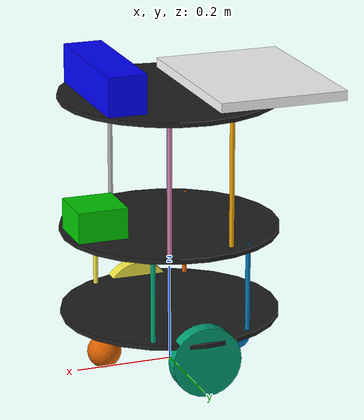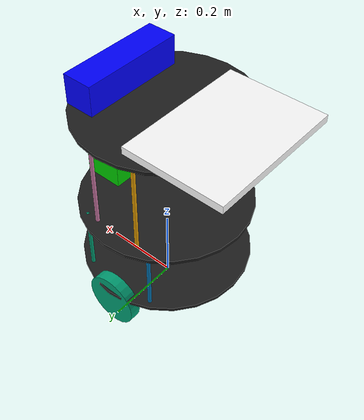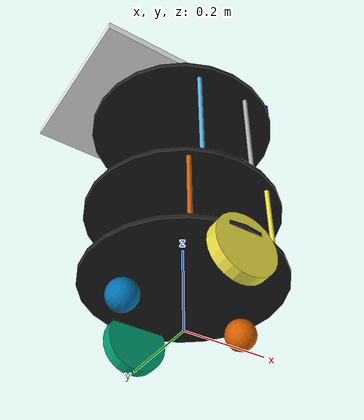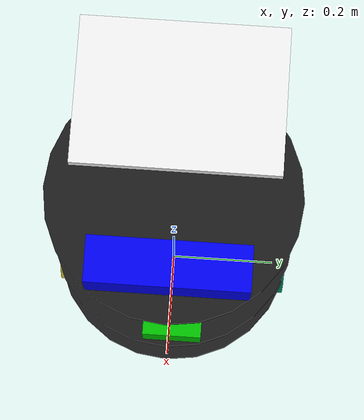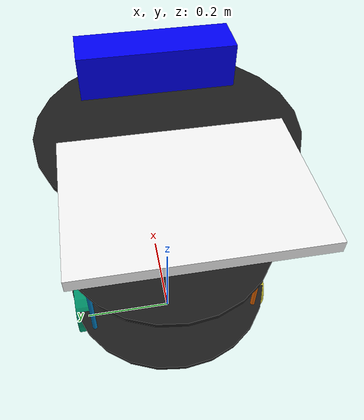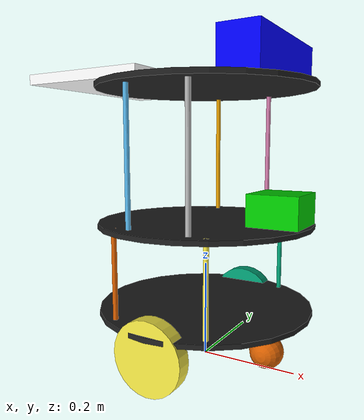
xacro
<?xml version="1.0"?>

<robot name="akira"
       xmlns:sensor="http://playerstage.sourceforge.net/gazebo/xmlschema/#sensor"
       xmlns:controller="http://playerstage.sourceforge.net/gazebo/xmlschema/#controller"
       xmlns:interface="http://playerstage.sourceforge.net/gazebo/xmlschema/#interface"
       xmlns:xacro="http://ros.org/wiki/xacro">

  <xacro:include filename="$(find akira_descriptor)/urdf/akira_body.urdf.xacro" />

  <!-- Body of Akirabot, with plates, standoffs and Create (including sim sensors) -->
  <akira_body/>

</robot>

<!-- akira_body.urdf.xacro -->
<robot name="akira_hardware" xmlns:xacro="http://ros.org/wiki/xacro">

  <!-- Macro for EddieBot body. Including Gazebo extensions, but does not include Kinect -->

  <material name="Green">
    <color rgba="0.0 0.8 0.0 1.0"/>
  </material>

  <material name="blue">
    <color rgba="0 0 1 1"/>
  </material>

  <material name="white">
    <color rgba="1.0 1.0 1.0 1.0"/>
  </material>

  <xacro:macro name="akira_body">

  <!-- base_footprint is a fictitious link(frame) that is on the ground right below base_link origin, navigation stack depends on this frame -->

  <link name="base_footprint">

    <visual>
      <origin xyz="0 0 0" rpy="0 0 0" />
      <geometry>
      <box size="0.001 0.001 0.001" />
      </geometry>
      <material name="Green" />
    </visual>

    <collision>
      <origin xyz="0 0 0" rpy="0 0 0" />
      <geometry>
      <box size="0.001 0.001 0.001" />
      </geometry>
    </collision>

  </link>

  <link name="base_link">

    <inertial>
      <mass value="2" />
      <origin xyz="0 0 0" />
      <inertia ixx="0.01" ixy="0.0" ixz="0.0"
        iyy="0.01" iyz="0.0" izz="0.5" />
    </inertial>

    <visual>
      <origin xyz=" 0 0 0" rpy="0 0 0" />
      <geometry>
        <cylinder length="0.01" radius="0.225"/>
      </geometry>
      <material name="Black" />
    </visual>

    <collision>
      <origin xyz="0.0 0.0 0.0" rpy="0 0 0" />
      <geometry>
        <cylinder length="0.01" radius="0.225"/>
      </geometry>
    </collision>
  </link>

  <joint name="base_footprint_joint" type="fixed">
    <origin xyz="0 0 0.11" rpy="0 0 0" />
    <parent link="base_footprint"/>
    <child link="base_link" />
  </joint>

  <link name="left_wheel_link">

    <inertial>
      <origin xyz="0 0 0"/>
      <mass value="0.01" />
      <inertia ixx="0.001" ixy="0.0" ixz="0.0"
        iyy="0.001" iyz="0.0" izz="0.001" />
    </inertial>

    <visual>
      <origin xyz="0 0 0" rpy="0 1.5707 1.5707" />
      <geometry>
        <cylinder radius="0.072" length = "0.03"/>
      </geometry>
    </visual>

    <collision>
      <origin xyz="0 0 0" rpy="0 1.5707 1.5707" />
      <geometry>
        <cylinder radius="0.072" length = "0.03"/>
      </geometry>
    </collision>

  </link>

  <joint name="left_wheel_joint" type="continuous">
    <origin xyz="0 0.205 -0.038" rpy="0 0 0"/>
    <parent link="base_link"/>
    <child link="left_wheel_link"/>
    <axis xyz="0 1 0"/>
  </joint>

  <link name="right_wheel_link">

    <inertial>
      <origin xyz="0 0 0"/>
      <mass value="0.01" />
      <inertia ixx="0.001" ixy="0.0" ixz="0.0"
        iyy="0.001" iyz="0.0" izz="0.001" />
    </inertial>

    <visual>
      <origin xyz="0 0 0" rpy="0 1.5707 1.5707" />
      <geometry>
        <cylinder radius="0.072" length = "0.03"/>
      </geometry>
    </visual>

    <collision>
      <origin xyz="0 0 0" rpy="0 1.5707 1.5707" />
      <geometry>
        <cylinder radius="0.072" length = "0.03"/>
      </geometry>
    </collision>

  </link>

  <joint name="right_wheel_joint" type="continuous">
    <origin xyz="0 -0.205 -0.038" rpy="0 0 0"/>
    <parent link="base_link"/>
    <child link="right_wheel_link"/>
    <axis xyz="0 1 0"/>
  </joint>

  <link name="rear_wheel_link">

    <inertial>
      <origin xyz="0 0 0"/>
      <mass value="0.001" />
      <inertia ixx="0.0001" ixy="0.0" ixz="0.0"
        iyy="0.0001" iyz="0.0" izz="0.0001" />
    </inertial>

    <visual>
      <origin xyz="0 0 0" rpy="0 1.5707 1.5707"/>
      <geometry>
        <sphere radius="0.035" />
      </geometry>
    </visual>

    <collision>
      <origin xyz="0 0 0" rpy="0 1.5707 1.5707" />
      <geometry>
        <sphere radius="0.035" />
      </geometry>
    </collision>

  </link>

  <!-- fixed because there's no transmission -->
  <joint name="rear_castor_joint" type="fixed">
    <origin xyz="-0.1425 0 -0.075" rpy="0 0 0"/>
    <parent link="base_link"/>
    <child link="rear_wheel_link"/>
    <axis xyz="0 1 0"/>
  </joint>

  <link name="front_wheel_link">

    <inertial>
      <origin xyz="0 0 0" />
      <mass value="0.01" />
      <inertia ixx="0.001" ixy="0.0" ixz="0.0"
        iyy="0.001" iyz="0.0" izz="0.001" />
    </inertial>

    <visual>
      <origin xyz="0 0 0" rpy="0 1.5707 1.5707"/>
      <geometry>
        <sphere radius="0.035" />
      </geometry>
    </visual>

    <collision>
      <origin xyz="0 0 0" rpy="0 1.5707 1.5707" />
      <geometry>
        <sphere radius="0.035" />
      </geometry>
    </collision>

  </link>

  <!-- fixed because there's no transmission -->
  <joint name="front_castor_joint" type="fixed">
    <origin xyz="0.1425 0 -0.075" rpy="0 0 0"/>
    <parent link="base_link"/>
    <child link="front_wheel_link"/>
    <axis xyz="0 1 0"/>
  </joint>

  <joint name="plate_0_joint" type="fixed">
    <origin xyz="0 0 0.180" rpy="0 0 0" />
    <parent link="base_link"/>
    <child link="plate_0_link" />
  </joint>

  <link name="plate_0_link">

    <inertial>
      <mass value="0.01" />
      <origin xyz="0 0 0" />
      <inertia ixx="0.01" ixy="0.0" ixz="0.0"
        iyy="0.01" iyz="0.0"
        izz="0.01" />
    </inertial>

    <visual>
      <origin xyz=" 0 0 0 " rpy="0 0 0" />
      <geometry>
        <cylinder radius="0.225" length = "0.01"/>
      </geometry>
      <material name="Black" />
    </visual>

    <collision>
      <origin xyz="0.0 0.0 0.0" rpy="0 0 0" />
      <geometry>
        <cylinder radius="0.225" length = "0.01"/>
      </geometry>
    </collision>

  </link>

  <joint name="laser_joint" type="fixed">
    <origin xyz="0.162 0.01 0.037" rpy="0 0 0" />
    <parent link="plate_0_link" />
    <child link="base_laser" />
  </joint>

  <link name="base_laser">

    <visual>
      <geometry>
        <box size="0.104 0.106 0.064" />
      </geometry>
      <material name="Green" />
    </visual>

    <inertial>
      <mass value="0.001" />
      <origin xyz="0 0 0" />
      <inertia ixx="0.0001" ixy="0.0" ixz="0.0"
        iyy="0.0001" iyz="0.0"
        izz="0.0001" />
    </inertial>

  </link>

  <joint name="plate_1_joint" type="fixed">
    <origin xyz="0 0 0.277" rpy="0 0 0" />
    <parent link="plate_0_link"/>
    <child link="plate_1_link" />
  </joint>

  <link name="plate_1_link">

    <inertial>
      <mass value="0.1" />
      <origin xyz="0 0 0" />
      <inertia ixx="0.01" ixy="0.0" ixz="0.0"
        iyy="0.01" iyz="0.0"
        izz="0.01" />
    </inertial>

    <visual>
      <origin xyz=" 0 0 0 " rpy="0 0 0" />
      <geometry>
        <cylinder radius="0.225" length = "0.01"/>
      </geometry>
      <material name="Black" />
    </visual>

    <collision>
      <origin xyz=" 0.0 0.0 0.0 " rpy="0 0 0" />
      <geometry>
        <cylinder radius="0.225" length = "0.01"/>
      </geometry>
    </collision>

  </link>

  <joint name="base_camera_joint" type="fixed">
    <origin xyz="0.135 0 0.045" rpy="0 0 0" />
    <parent link="plate_1_link" />
    <child link="camera_link" />
  </joint>

  <link name="camera_link">

    <inertial>
      <mass value="0.01" />
      <origin xyz="0 0 0" />
      <inertia ixx="0.001" ixy="0.0" ixz="0.0"
        iyy="0.001" iyz="0.0"
        izz="0.001" />
    </inertial>

    <visual>
      <origin xyz=" 0 0 0 " rpy="0 0 0" />
      <geometry>
        <box size="0.08 0.28 0.08"/>
      </geometry>
      <material name="blue" />
    </visual>

    <collision>
      <origin xyz="0.0 0.0 0.0" rpy="0 0 0" />
      <geometry>
        <box size="0.08 0.28 0.08"/>
      </geometry>
    </collision>

  </link>

  <joint name="bars_1_joint" type="fixed">
    <origin xyz="0.10 0.18 0.0925" rpy="0 0 0" />
    <parent link="base_link" />
    <child link="bar_1_link" />
  </joint>

  <link name="bar_1_link">

    <inertial>
      <mass value="0.001" />
      <origin xyz="0 0 0" />
      <inertia ixx="0.0001" ixy="0.0" ixz="0.0"
          iyy="0.0001" iyz="0.0"
          izz="0.0001" />
    </inertial>

    <visual>
      <origin xyz=" 0 0 0 " rpy="0 0 0" />
      <geometry>
        <cylinder radius="0.005" length = "0.185"/>
      </geometry>
    </visual>

    <collision>
      <origin xyz="0.0 0.0 0.0" rpy="0 0 0" />
      <geometry>
        <cylinder radius="0.005" length = "0.185"/>
      </geometry>
    </collision>

  </link>

  <joint name="bars_2_joint" type="fixed">
    <origin xyz="0.10 -0.18 0.0925" rpy="0 0 0" />
    <parent link="base_link" />
    <child link="bar_2_link" />
  </joint>

  <link name="bar_2_link">

    <inertial>
      <mass value="0.001" />
      <origin xyz="0 0 0" />
      <inertia ixx="0.0001" ixy="0.0" ixz="0.0"
          iyy="0.0001" iyz="0.0"
          izz="0.0001" />
    </inertial>

    <visual>
      <origin xyz=" 0 0 0 " rpy="0 0 0" />
      <geometry>
        <cylinder radius="0.005" length = "0.185"/>
      </geometry>
    </visual>

    <collision>
      <origin xyz="0.0 0.0 0.0" rpy="0 0 0" />
      <geometry>
        <cylinder radius="0.005" length = "0.185"/>
      </geometry>
    </collision>

  </link>

  <joint name="bars_3_joint" type="fixed">
    <origin xyz="-0.10 0.18 0.0925" rpy="0 0 0" />
    <parent link="base_link" />
    <child link="bar_3_link" />
  </joint>

  <link name="bar_3_link">

    <inertial>
      <mass value="0.001" />
      <origin xyz="0 0 0" />
      <inertia ixx="0.0001" ixy="0.0" ixz="0.0"
          iyy="0.0001" iyz="0.0"
          izz="0.0001" />
    </inertial>

    <visual>
      <origin xyz=" 0 0 0 " rpy="0 0 0" />
      <geometry>
        <cylinder radius="0.005" length = "0.185"/>
      </geometry>
    </visual>

    <collision>
      <origin xyz="0.0 0.0 0.0" rpy="0 0 0" />
      <geometry>
        <cylinder radius="0.005" length = "0.185"/>
      </geometry>
    </collision>

  </link>

  <joint name="bars_4_joint" type="fixed">
    <origin xyz="-0.10 -0.18 0.0925" rpy="0 0 0" />
    <parent link="base_link" />
    <child link="bar_4_link" />
  </joint>

  <link name="bar_4_link">

    <inertial>
      <mass value="0.001" />
      <origin xyz="0 0 0" />
      <inertia ixx="0.0001" ixy="0.0" ixz="0.0"
          iyy="0.0001" iyz="0.0"
          izz="0.0001" />
    </inertial>

    <visual>
      <origin xyz=" 0 0 0 " rpy="0 0 0" />
      <geometry>
        <cylinder radius="0.005" length = "0.185"/>
      </geometry>
    </visual>

    <collision>
      <origin xyz="0.0 0.0 0.0" rpy="0 0 0" />
      <geometry>
        <cylinder radius="0.005" length = "0.185"/>
      </geometry>
    </collision>

  </link>

  <joint name="bars_5_joint" type="fixed">
    <origin xyz="0.065 0.18 0.1385" rpy="0 0 0" />
    <parent link="plate_0_link" />
    <child link="bar_5_link" />
  </joint>

  <link name="bar_5_link">

    <inertial>
      <mass value="0.001" />
      <origin xyz="0 0 0" />
      <inertia ixx="0.0001" ixy="0.0" ixz="0.0"
          iyy="0.0001" iyz="0.0"
          izz="0.0001" />
    </inertial>

    <visual>
      <origin xyz=" 0 0 0 " rpy="0 0 0" />
      <geometry>
        <cylinder radius="0.005" length = "0.275"/>
      </geometry>
    </visual>

    <collision>
      <origin xyz="0.0 0.0 0.0" rpy="0 0 0" />
      <geometry>
        <cylinder radius="0.005" length = "0.275"/>
      </geometry>
    </collision>

  </link>

  <joint name="bars_6_joint" type="fixed">
    <origin xyz="0.065 -0.18 0.1385" rpy="0 0 0" />
    <parent link="plate_0_link" />
    <child link="bar_6_link" />
  </joint>

  <link name="bar_6_link">

    <inertial>
      <mass value="0.001" />
      <origin xyz="0 0 0" />
      <inertia ixx="0.0001" ixy="0.0" ixz="0.0"
          iyy="0.0001" iyz="0.0"
          izz="0.0001" />
    </inertial>

    <visual>
      <origin xyz=" 0 0 0 " rpy="0 0 0" />
      <geometry>
        <cylinder radius="0.005" length = "0.275"/>
      </geometry>
    </visual>

    <collision>
      <origin xyz="0.0 0.0 0.0" rpy="0 0 0" />
      <geometry>
        <cylinder radius="0.005" length = "0.275"/>
      </geometry>
    </collision>

  </link>

  <joint name="bars_7_joint" type="fixed">
    <origin xyz="-0.065 0.18 0.1385" rpy="0 0 0" />
    <parent link="plate_0_link" />
    <child link="bar_7_link" />
  </joint>

  <link name="bar_7_link">

    <inertial>
      <mass value="0.001" />
      <origin xyz="0 0 0" />
      <inertia ixx="0.0001" ixy="0.0" ixz="0.0"
          iyy="0.0001" iyz="0.0"
          izz="0.0001" />
    </inertial>

    <visual>
      <origin xyz=" 0 0 0 " rpy="0 0 0" />
      <geometry>
        <cylinder radius="0.005" length = "0.275"/>
      </geometry>
    </visual>

    <collision>
      <origin xyz="0.0 0.0 0.0" rpy="0 0 0" />
      <geometry>
        <cylinder radius="0.005" length = "0.275"/>
      </geometry>
    </collision>

  </link>

  <joint name="bars_8_joint" type="fixed">
    <origin xyz="-0.065 -0.18 0.1385" rpy="0 0 0" />
    <parent link="plate_0_link" />
    <child link="bar_8_link" />
  </joint>

  <link name="bar_8_link">

    <inertial>
      <mass value="0.001" />
      <origin xyz="0 0 0" />
      <inertia ixx="0.0001" ixy="0.0" ixz="0.0"
          iyy="0.0001" iyz="0.0"
          izz="0.0001" />
    </inertial>

    <visual>
      <origin xyz=" 0 0 0 " rpy="0 0 0" />
      <geometry>
        <cylinder radius="0.005" length = "0.275"/>
      </geometry>
    </visual>

    <collision>
      <origin xyz="0.0 0.0 0.0" rpy="0 0 0" />
      <geometry>
        <cylinder radius="0.005" length = "0.275"/>
      </geometry>
    </collision>

  </link>

  <joint name="base_laptop_joint" type="fixed">
    <origin xyz="-0.173 0 0.015" rpy="0 0 0" />
    <parent link="plate_1_link" />
    <child link="base_laptop_link" />
  </joint>

  <link name="base_laptop_link">

    <inertial>
      <mass value="0.001" />
      <origin xyz="0 0 0" />
      <inertia ixx="0.0001" ixy="0.0" ixz="0.0"
          iyy="0.0001" iyz="0.0"
          izz="0.0001" />
    </inertial>

    <visual>
      <origin xyz=" 0 0 0 " rpy="0 0 0" />
      <geometry>
        <box size="0.266 0.37 0.02"/>
      </geometry>
      <material name="white" />
    </visual>

    <collision>
      <origin xyz="0.0 0.0 0.0" rpy="0 0 0" />
      <geometry>
        <box size="0.266 0.37 0.02"/>
      </geometry>
    </collision>

  </link>

  </xacro:macro>

</robot>
